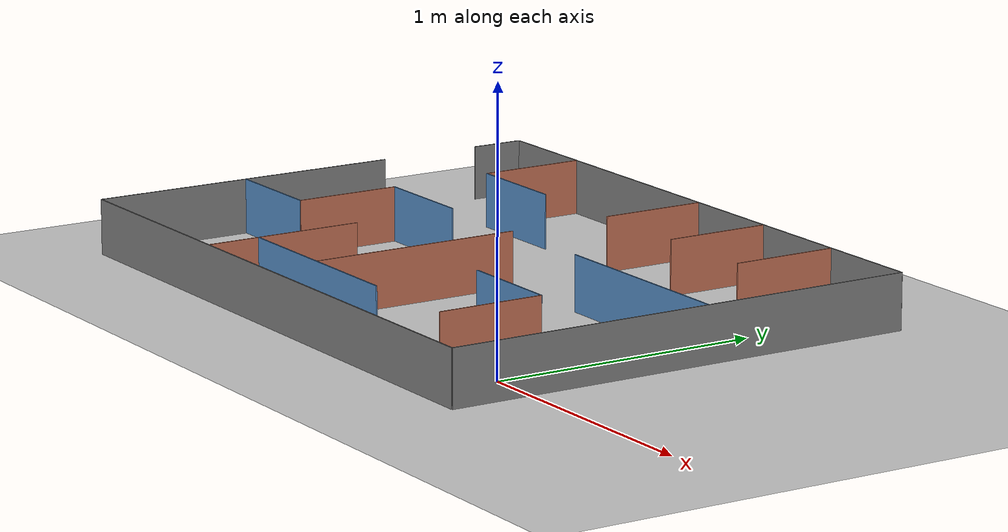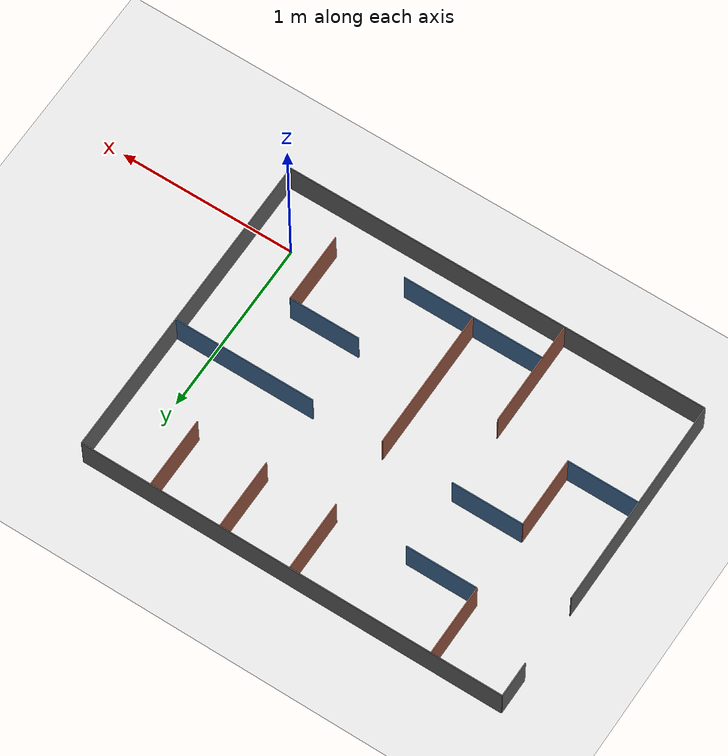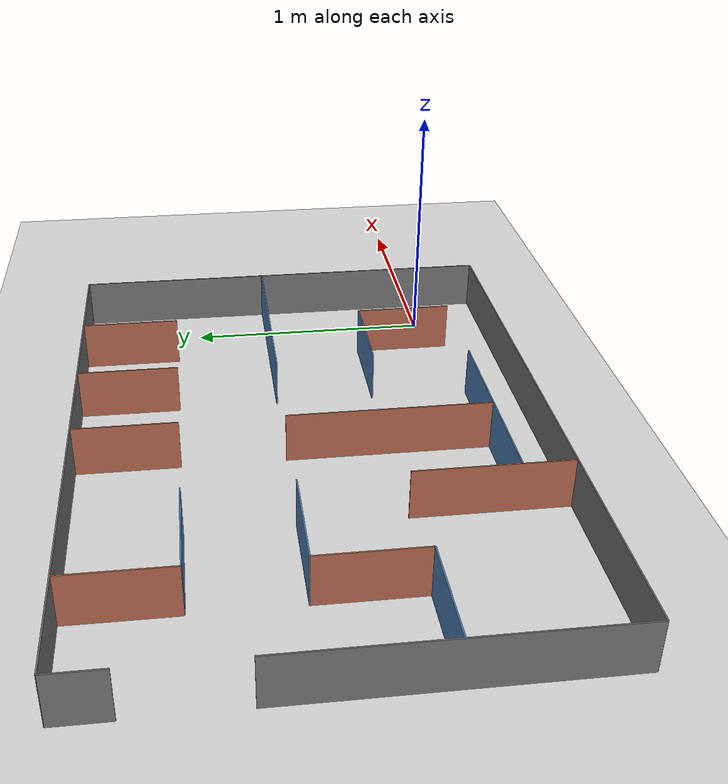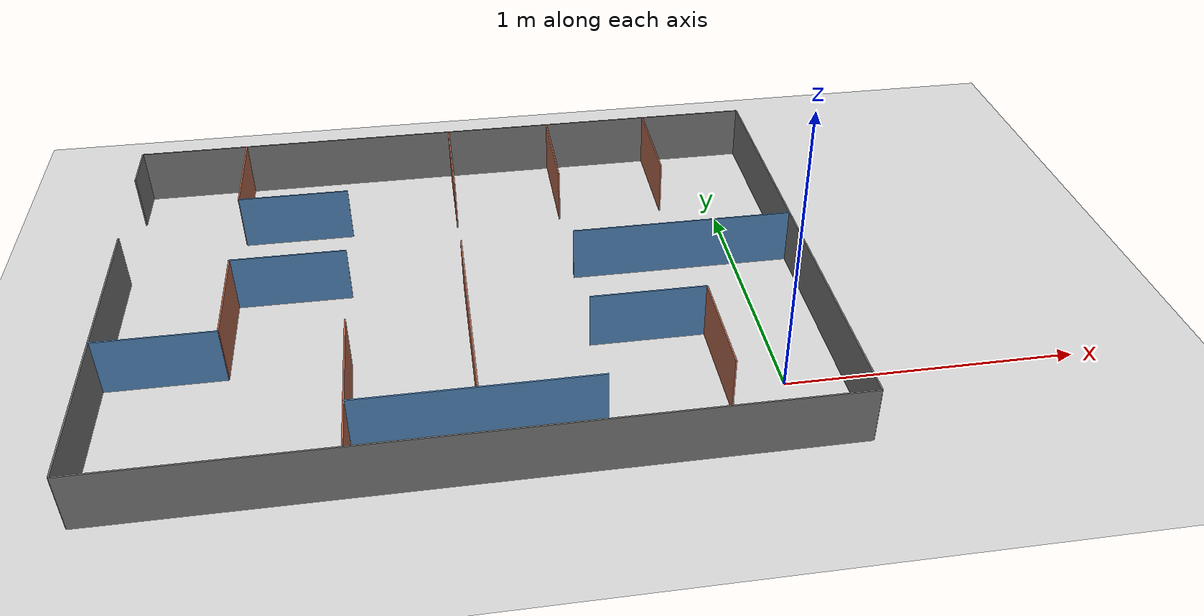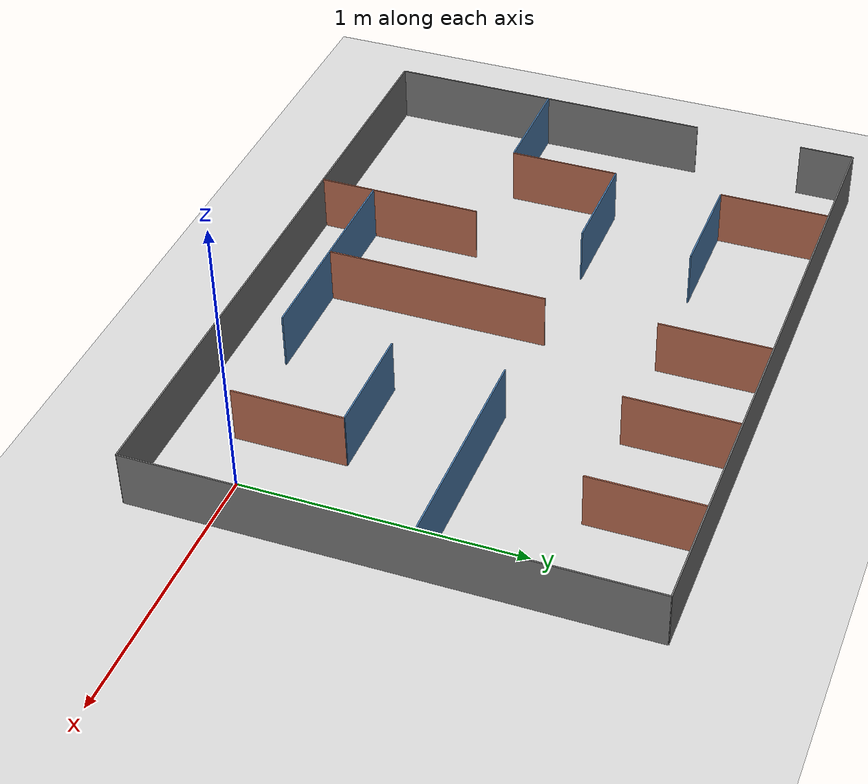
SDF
<?xml version="1.0"?>
<sdf version="1.9">
    <world name="environment_world">

        <physics name="1ms" type="ignored">
            <max_step_size>0.001</max_step_size>
            <real_time_factor>1.0</real_time_factor>
        </physics>

        <plugin filename="gz-sim-physics-system"
                name="gz::sim::systems::Physics"/>

        <plugin filename="gz-sim-user-commands-system"
                name="gz::sim::systems::UserCommands"/>

        <plugin filename="gz-sim-scene-broadcaster-system"
                name="gz::sim::systems::SceneBroadcaster"/>

        <plugin filename="gz-sim-sensors-system"
                name="gz::sim::systems::Sensors">
            <render_engine>ogre2</render_engine>
        </plugin>

        <light type="directional" name="sun">
            <cast_shadows>true</cast_shadows>
            <pose>-1.0000 0.6000 10 0 0 0</pose>
            <diffuse>1 1 1 1</diffuse>
            <specular>0.5 0.5 0.5 1</specular>
            <direction>-0.5 0.1 -0.9</direction>
        </light>

        <!-- Ground plane -->
        <model name="ground_plane">
            <static>true</static>
            <link name="link">
                <collision name="c">
                    <geometry><plane><normal>0 0 1</normal><size>100 100</size></plane></geometry>
                </collision>
                <visual name="v">
                    <geometry><plane><normal>0 0 1</normal><size>100 100</size></plane></geometry>
                    <material><ambient>0.85 0.85 0.85 1</ambient><diffuse>0.85 0.85 0.85 1</diffuse></material>
                </visual>
            </link>
        </model>

        <!-- ===== OUTER WALLS ===== -->

        <model name="wall_N">
            <static>true</static>
            <pose>-1.0000 1.5000 0.1025 0 0 0</pose>
            <link name="link">
                <collision name="c"><geometry><box><size>2.4 0.005 0.205</size></box></geometry></collision>
                <visual name="v"><geometry><box><size>2.4 0.005 0.205</size></box></geometry>
                <material><ambient>0.35 0.35 0.35 1</ambient><diffuse>0.45 0.45 0.45 1</diffuse></material></visual>
            </link>
        </model>

        <model name="wall_S">
            <static>true</static>
            <pose>-1.0000 -0.3000 0.1025 0 0 0</pose>
            <link name="link">
                <collision name="c"><geometry><box><size>2.4 0.005 0.205</size></box></geometry></collision>
                <visual name="v"><geometry><box><size>2.4 0.005 0.205</size></box></geometry>
                <material><ambient>0.35 0.35 0.35 1</ambient><diffuse>0.45 0.45 0.45 1</diffuse></material></visual>
            </link>
        </model>

        <!-- West wall: split with door gap at Y=0.5 area -->
        <!-- Original: X=-1.2, full Y=-0.9 to +0.9 -->
        <!-- Door between maze_r1_west(at Y=0.5) and wall_W -->
        <!-- maze_r1_west starts at X=-1.2, so door = gap in west wall at Y=0.5 -->
        <!-- West wall seg1: Y=-0.9 to +0.3 (len=1.2, center=-0.3) -->
        <model name="wall_W_south">
            <static>true</static>
            <pose>-2.2000 0.3000 0.1025 0 0 0</pose>
            <link name="link">
                <collision name="c"><geometry><box><size>0.005 1.2 0.205</size></box></geometry></collision>
                <visual name="v"><geometry><box><size>0.005 1.2 0.205</size></box></geometry>
                <material><ambient>0.35 0.35 0.35 1</ambient><diffuse>0.45 0.45 0.45 1</diffuse></material></visual>
            </link>
        </model>
        <!-- gap: Y=+0.3 to +0.7 = 0.4m door ✓ -->
        <!-- West wall seg2: Y=+0.7 to +0.9 (len=0.2, center=+0.8) -->
        <model name="wall_W_north">
            <static>true</static>
            <pose>-2.2000 1.4000 0.1025 0 0 0</pose>
            <link name="link">
                <collision name="c"><geometry><box><size>0.005 0.2 0.205</size></box></geometry></collision>
                <visual name="v"><geometry><box><size>0.005 0.2 0.205</size></box></geometry>
                <material><ambient>0.35 0.35 0.35 1</ambient><diffuse>0.45 0.45 0.45 1</diffuse></material></visual>
            </link>
        </model>

        <model name="wall_E">
            <static>true</static>
            <pose>0.2000 0.6000 0.1025 0 0 0</pose>
            <link name="link">
                <collision name="c"><geometry><box><size>0.005 1.8 0.205</size></box></geometry></collision>
                <visual name="v"><geometry><box><size>0.005 1.8 0.205</size></box></geometry>
                <material><ambient>0.35 0.35 0.35 1</ambient><diffuse>0.45 0.45 0.45 1</diffuse></material></visual>
            </link>
        </model>

        <!-- ===== HORIZONTAL MAZE WALLS ===== -->

        <!-- maze_r1_west: X=-1.2 to -0.4 (len=0.8, center=-0.8) at Y=0.5 -->
        <!-- CHANGED: door between r1_west and wall_W = gap at west end -->
        <!-- So r1_west now starts from X=-0.8 (not -1.2), gap = X=-1.2 to -0.8 = 0.4m door ✓ -->
        <model name="maze_r1_west">
            <static>true</static>
            <pose>-1.6000 1.1000 0.1025 0 0 0</pose>
            <link name="link">
                <collision name="c"><geometry><box><size>0.4 0.005 0.205</size></box></geometry></collision>
                <visual name="v"><geometry><box><size>0.4 0.005 0.205</size></box></geometry>
                <material><ambient>0.3 0.45 0.65 1</ambient><diffuse>0.3 0.5 0.7 1</diffuse></material></visual>
            </link>
        </model>
        <!-- maze_r1_east: REMOVED entirely -->

        <!-- maze_r2_west: X=-0.8 to -0.4 (len=0.4) at Y=0.1 -->
        <model name="maze_r2_west">
            <static>true</static>
            <pose>-1.6000 0.7000 0.1025 0 0 0</pose>
            <link name="link">
                <collision name="c"><geometry><box><size>0.4 0.005 0.205</size></box></geometry></collision>
                <visual name="v"><geometry><box><size>0.4 0.005 0.205</size></box></geometry>
                <material><ambient>0.3 0.45 0.65 1</ambient><diffuse>0.3 0.5 0.7 1</diffuse></material></visual>
            </link>
        </model>

        <!-- maze_r2_east: X=0.0 to +1.2 (len=1.2) at Y=0.1 -->
        <!-- Corner door between maze_c3_south(X=0.0) and maze_r2_east -->
        <!-- c3_south is at X=0.0, r2_east starts at X=0.0 -->
        <!-- Door = gap at west end of r2_east: start from X=+0.4 instead -->
        <!-- gap = X=0.0 to 0.4 = 0.4m corner door ✓ -->
        <model name="maze_r2_east">
            <static>true</static>
            <pose>-0.2000 0.7000 0.1025 0 0 0</pose>
            <link name="link">
                <collision name="c"><geometry><box><size>0.8 0.005 0.205</size></box></geometry></collision>
                <visual name="v"><geometry><box><size>0.8 0.005 0.205</size></box></geometry>
                <material><ambient>0.3 0.45 0.65 1</ambient><diffuse>0.3 0.5 0.7 1</diffuse></material></visual>
            </link>
        </model>

        <!-- maze_r3_west: X=-1.2 to -0.4 (len=0.8) at Y=-0.3 -->
        <!-- Corner door between maze_r3_west and maze_c2_south(X=-0.4) -->
        <!-- c2_south is at X=-0.4, r3_west ends at X=-0.4 -->
        <!-- Door = gap at east end of r3_west: ends at X=-0.8 instead -->
        <!-- gap = X=-0.8 to -0.4 = 0.4m corner door ✓ -->
        <model name="maze_r3_west">
            <static>true</static>
            <pose>-2.0000 0.3000 0.1025 0 0 0</pose>
            <link name="link">
                <collision name="c"><geometry><box><size>0.4 0.005 0.205</size></box></geometry></collision>
                <visual name="v"><geometry><box><size>0.4 0.005 0.205</size></box></geometry>
                <material><ambient>0.3 0.45 0.65 1</ambient><diffuse>0.3 0.5 0.7 1</diffuse></material></visual>
            </link>
        </model>

        <model name="maze_r3_mid">
            <static>true</static>
            <pose>-0.4000 0.3000 0.1025 0 0 0</pose>
            <link name="link">
                <collision name="c"><geometry><box><size>0.4 0.005 0.205</size></box></geometry></collision>
                <visual name="v"><geometry><box><size>0.4 0.005 0.205</size></box></geometry>
                <material><ambient>0.3 0.45 0.65 1</ambient><diffuse>0.3 0.5 0.7 1</diffuse></material></visual>
            </link>
        </model>

        <!-- maze_r4_mid: X=-0.4 to +0.4 (len=0.8) at Y=-0.7 -->
        <model name="maze_r4_mid">
            <static>true</static>
            <pose>-1.0000 -0.1000 0.1025 0 0 0</pose>
            <link name="link">
                <collision name="c"><geometry><box><size>0.8 0.005 0.205</size></box></geometry></collision>
                <visual name="v"><geometry><box><size>0.8 0.005 0.205</size></box></geometry>
                <material><ambient>0.3 0.45 0.65 1</ambient><diffuse>0.3 0.5 0.7 1</diffuse></material></visual>
            </link>
        </model>

        <!-- ===== VERTICAL MAZE WALLS ===== -->

        <!-- maze_c1_north: X=-0.8, Y=+0.5 to +0.9 (len=0.4, center=+0.7) -->
        <model name="maze_c1_north">
            <static>true</static>
            <pose>-1.8000 1.3000 0.1025 0 0 0</pose>
            <link name="link">
                <collision name="c"><geometry><box><size>0.005 0.4 0.205</size></box></geometry></collision>
                <visual name="v"><geometry><box><size>0.005 0.4 0.205</size></box></geometry>
                <material><ambient>0.65 0.35 0.3 1</ambient><diffuse>0.7 0.4 0.3 1</diffuse></material></visual>
            </link>
        </model>

        <!-- maze_c1_mid: X=-0.8, Y=-0.3 to +0.1 (len=0.4, center=-0.1) -->
        <model name="maze_c1_mid">
            <static>true</static>
            <pose>-1.8000 0.5000 0.1025 0 0 0</pose>
            <link name="link">
                <collision name="c"><geometry><box><size>0.005 0.4 0.205</size></box></geometry></collision>
                <visual name="v"><geometry><box><size>0.005 0.4 0.205</size></box></geometry>
                <material><ambient>0.65 0.35 0.3 1</ambient><diffuse>0.7 0.4 0.3 1</diffuse></material></visual>
            </link>
        </model>
        <!-- gap: Y=0.1 to 0.5 = 0.4m ✓ -->

        <!-- maze_c2_south: X=-0.4, Y=-0.9 to -0.3 (len=0.6, center=-0.6) -->
        <model name="maze_c2_south">
            <static>true</static>
            <pose>-1.4000 0.0000 0.1025 0 0 0</pose>
            <link name="link">
                <collision name="c"><geometry><box><size>0.005 0.6 0.205</size></box></geometry></collision>
                <visual name="v"><geometry><box><size>0.005 0.6 0.205</size></box></geometry>
                <material><ambient>0.65 0.35 0.3 1</ambient><diffuse>0.7 0.4 0.3 1</diffuse></material></visual>
            </link>
        </model>

        <!-- maze_c3_north: X=0.0, Y=+0.5 to +0.9 (len=0.4, center=+0.7) -->
        <model name="maze_c3_north">
            <static>true</static>
            <pose>-1.0000 1.3000 0.1025 0 0 0</pose>
            <link name="link">
                <collision name="c"><geometry><box><size>0.005 0.4 0.205</size></box></geometry></collision>
                <visual name="v"><geometry><box><size>0.005 0.4 0.205</size></box></geometry>
                <material><ambient>0.65 0.35 0.3 1</ambient><diffuse>0.7 0.4 0.3 1</diffuse></material></visual>
            </link>
        </model>

        <!-- maze_c3_south: X=0.0, Y=-0.7 to +0.1 (len=0.8, center=-0.3) -->
        <!-- Corner door at top (Y=0.1): gap between c3_south top and r2_east west end -->
        <!-- c3_south goes up to Y=0.1, r2_east starts at X=0.4 — gap X=0.0 to 0.4 is the door -->
        <model name="maze_c3_south">
            <static>true</static>
            <pose>-1.0000 0.3000 0.1025 0 0 0</pose>
            <link name="link">
                <collision name="c"><geometry><box><size>0.005 0.8 0.205</size></box></geometry></collision>
                <visual name="v"><geometry><box><size>0.005 0.8 0.205</size></box></geometry>
                <material><ambient>0.65 0.35 0.3 1</ambient><diffuse>0.7 0.4 0.3 1</diffuse></material></visual>
            </link>
        </model>
        <!-- gap top: Y=0.1 to 0.5 = 0.4m ✓ -->

        <!-- maze_c4_north: X=+0.4, Y=+0.5 to +0.9 (len=0.4, center=+0.7) -->
        <model name="maze_c4_north">
            <static>true</static>
            <pose>-0.6000 1.3000 0.1025 0 0 0</pose>
            <link name="link">
                <collision name="c"><geometry><box><size>0.005 0.4 0.205</size></box></geometry></collision>
                <visual name="v"><geometry><box><size>0.005 0.4 0.205</size></box></geometry>
                <material><ambient>0.65 0.35 0.3 1</ambient><diffuse>0.7 0.4 0.3 1</diffuse></material></visual>
            </link>
        </model>

        <!-- maze_c5_north: HALVED — original Y=+0.1 to +0.9 (len=0.8) -->
        <!-- Half = Y=+0.5 to +0.9 (len=0.4, center=+0.7) -->
        <model name="maze_c5_north">
            <static>true</static>
            <pose>-0.2000 1.3000 0.1025 0 0 0</pose>
            <link name="link">
                <collision name="c"><geometry><box><size>0.005 0.4 0.205</size></box></geometry></collision>
                <visual name="v"><geometry><box><size>0.005 0.4 0.205</size></box></geometry>
                <material><ambient>0.65 0.35 0.3 1</ambient><diffuse>0.7 0.4 0.3 1</diffuse></material></visual>
            </link>
        </model>

        <!-- maze_c5_south: X=+0.8, Y=-0.7 to -0.3 (len=0.4, center=-0.5) -->
        <model name="maze_c5_south">
            <static>true</static>
            <pose>-0.2000 0.1000 0.1025 0 0 0</pose>
            <link name="link">
                <collision name="c"><geometry><box><size>0.005 0.4 0.205</size></box></geometry></collision>
                <visual name="v"><geometry><box><size>0.005 0.4 0.205</size></box></geometry>
                <material><ambient>0.65 0.35 0.3 1</ambient><diffuse>0.7 0.4 0.3 1</diffuse></material></visual>
            </link>
        </model>

    </world>
</sdf>
